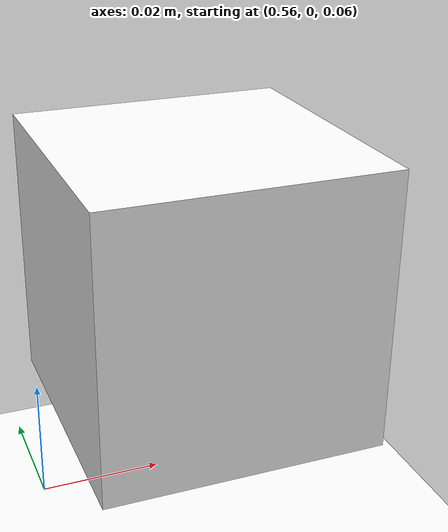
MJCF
<mujoco model="toys_scene">
  <compiler angle="radian" coordinate="local" />
  <option timestep="0.01" gravity="0 0 -9.81" />
  <asset>
    <texture type="2d" name="wood_texture" file="../../textures/wood_table_worn_2k/textures/wood_table_worn_diff_2k.png"/>
    <texture type="2d" name="oak_veneer"  file="../../textures/oak_veneer_01_2k/textures/oak_veneer_01_diff_2k.png" />
    <material name="oak_wood_material">
      <rgb texture="oak_veneer"/>
    </material>
    <material name="wood_table_worn_material">
      <rgb texture="wood_texture"/>
    </material>

  </asset>

  <worldbody>
  <light name="spotlight" mode="targetbodycom" target="toys" diffuse=".8 .8 .8" specular="0.3 0.3 0.3" pos="0 -6 4" cutoff="30"/>
    <body name="toys" pos="0 0 0">
    <light name="top" pos="0 0 2" mode="trackcom"/>
    <camera name="back" pos="-3 0 1" xyaxes="0 -1 0 1 0 2" mode="trackcom"/>
    <camera name="side" pos="0 -3 1" xyaxes="1 0 0 0 1 2" mode="trackcom"/>
      <body name="box" pos="0 0 -0.06">
        <geom name="box_geom" type="box" size="1 1 0.1" material="oak_wood_material" density="1000" condim="3" contype="1" conaffinity="1" />
      </body>
    </body>
    <body name="item" pos="0.591 0.01 0.09">
      <freejoint name="item_joint"/>
      <geom name="item_geom" type="box" size="0.025 0.025 0.025" material="wood_table_worn_material" density="500" contype="1" conaffinity="1" />
      <site name="item_site" pos="0 0 0" size="0.02" />
    </body>
  </worldbody>

</mujoco>
